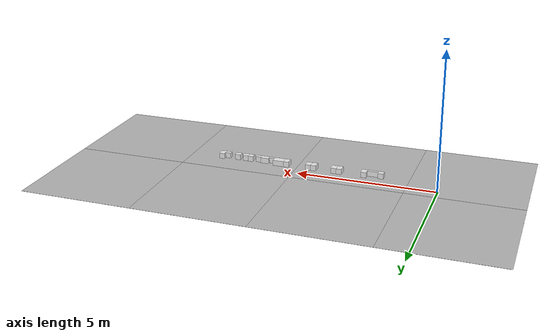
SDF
<sdf version='1.6'><world name='default'>
    <light name='sun_light' type='directional'>
      <pose frame=''>0 0 10 0 -0 0</pose>
      <diffuse>0.5 0.5 0.5 1</diffuse>
      <specular>0.1 0.1 0.1 1</specular>
      <direction>0.1 0.1 -0.9</direction>
      <attenuation>
        <range>20</range>
        <constant>0.5</constant>
        <linear>0.01</linear>
        <quadratic>0.001</quadratic>
      </attenuation>
      <cast_shadows>1</cast_shadows>
    </light>

    <model name='Tile/0-0'>
      <static>1</static>
      <link name='link'>
        <collision name='collision'>
          <geometry>
            <plane>
              <normal>0 0 1</normal>
              <size>4.096 4.096</size>
            </plane>
          </geometry>
          <surface>
            <friction>
              <ode>
                <mu>100</mu>
                <mu2>50</mu2>
              </ode>
              <torsional>
                <ode/>
              </torsional>
            </friction>
            <contact>
              <ode/>
            </contact>
            <bounce/>
          </surface>
          <max_contacts>10</max_contacts>
        </collision>
        <visual name='visual'>
          <cast_shadows>0</cast_shadows>
          <geometry>
            <plane>
              <normal>0 0 1</normal>
              <size>4.096 4.096</size>
            </plane>
          </geometry>
          <material>
            <script>
              <uri>file://materials/scripts</uri>
              <uri>file://materials/textures</uri>
              <name>Tile/aa44efc093d15b0d016b671cb8dad8b9b5925cd42bc6b331ef31decf4ba6863e</name>
            </script>
          </material>
        </visual>
        <self_collide>0</self_collide>
        <enable_wind>0</enable_wind>
        <kinematic>0</kinematic>
      </link>
      <pose frame=''>-0.952 -1.6520000000000001 0 0 -0 0</pose>
    </model>

    <model name='Tile/0-1'>
      <static>1</static>
      <link name='link'>
        <collision name='collision'>
          <geometry>
            <plane>
              <normal>0 0 1</normal>
              <size>4.096 4.096</size>
            </plane>
          </geometry>
          <surface>
            <friction>
              <ode>
                <mu>100</mu>
                <mu2>50</mu2>
              </ode>
              <torsional>
                <ode/>
              </torsional>
            </friction>
            <contact>
              <ode/>
            </contact>
            <bounce/>
          </surface>
          <max_contacts>10</max_contacts>
        </collision>
        <visual name='visual'>
          <cast_shadows>0</cast_shadows>
          <geometry>
            <plane>
              <normal>0 0 1</normal>
              <size>4.096 4.096</size>
            </plane>
          </geometry>
          <material>
            <script>
              <uri>file://materials/scripts</uri>
              <uri>file://materials/textures</uri>
              <name>Tile/6681b896b1587d54cb69aadeb5fb7247b4d6d500490292053e67105ac88ca889</name>
            </script>
          </material>
        </visual>
        <self_collide>0</self_collide>
        <enable_wind>0</enable_wind>
        <kinematic>0</kinematic>
      </link>
      <pose frame=''>-0.952 2.444 0 0 -0 0</pose>
    </model>

    <model name='Tile/1-0'>
      <static>1</static>
      <link name='link'>
        <collision name='collision'>
          <geometry>
            <plane>
              <normal>0 0 1</normal>
              <size>4.096 4.096</size>
            </plane>
          </geometry>
          <surface>
            <friction>
              <ode>
                <mu>100</mu>
                <mu2>50</mu2>
              </ode>
              <torsional>
                <ode/>
              </torsional>
            </friction>
            <contact>
              <ode/>
            </contact>
            <bounce/>
          </surface>
          <max_contacts>10</max_contacts>
        </collision>
        <visual name='visual'>
          <cast_shadows>0</cast_shadows>
          <geometry>
            <plane>
              <normal>0 0 1</normal>
              <size>4.096 4.096</size>
            </plane>
          </geometry>
          <material>
            <script>
              <uri>file://materials/scripts</uri>
              <uri>file://materials/textures</uri>
              <name>Tile/ac60f42697dc3697069ae2f91f63679c82d3df775ef8773f632b1540f83ccfba</name>
            </script>
          </material>
        </visual>
        <self_collide>0</self_collide>
        <enable_wind>0</enable_wind>
        <kinematic>0</kinematic>
      </link>
      <pose frame=''>3.144 -1.6520000000000001 0 0 -0 0</pose>
    </model>

    <model name='Tile/1-1'>
      <static>1</static>
      <link name='link'>
        <collision name='collision'>
          <geometry>
            <plane>
              <normal>0 0 1</normal>
              <size>4.096 4.096</size>
            </plane>
          </geometry>
          <surface>
            <friction>
              <ode>
                <mu>100</mu>
                <mu2>50</mu2>
              </ode>
              <torsional>
                <ode/>
              </torsional>
            </friction>
            <contact>
              <ode/>
            </contact>
            <bounce/>
          </surface>
          <max_contacts>10</max_contacts>
        </collision>
        <visual name='visual'>
          <cast_shadows>0</cast_shadows>
          <geometry>
            <plane>
              <normal>0 0 1</normal>
              <size>4.096 4.096</size>
            </plane>
          </geometry>
          <material>
            <script>
              <uri>file://materials/scripts</uri>
              <uri>file://materials/textures</uri>
              <name>Tile/13957a6de1f2afce18d7f1f64dacc2f21295e26ccf498256b0e1a51002cd5706</name>
            </script>
          </material>
        </visual>
        <self_collide>0</self_collide>
        <enable_wind>0</enable_wind>
        <kinematic>0</kinematic>
      </link>
      <pose frame=''>3.144 2.444 0 0 -0 0</pose>
    </model>

    <model name='Tile/2-0'>
      <static>1</static>
      <link name='link'>
        <collision name='collision'>
          <geometry>
            <plane>
              <normal>0 0 1</normal>
              <size>4.096 4.096</size>
            </plane>
          </geometry>
          <surface>
            <friction>
              <ode>
                <mu>100</mu>
                <mu2>50</mu2>
              </ode>
              <torsional>
                <ode/>
              </torsional>
            </friction>
            <contact>
              <ode/>
            </contact>
            <bounce/>
          </surface>
          <max_contacts>10</max_contacts>
        </collision>
        <visual name='visual'>
          <cast_shadows>0</cast_shadows>
          <geometry>
            <plane>
              <normal>0 0 1</normal>
              <size>4.096 4.096</size>
            </plane>
          </geometry>
          <material>
            <script>
              <uri>file://materials/scripts</uri>
              <uri>file://materials/textures</uri>
              <name>Tile/bb4e230d10bed35599b0b6122eb139459b07c0649bdebc5197fb7011a85cf1d3</name>
            </script>
          </material>
        </visual>
        <self_collide>0</self_collide>
        <enable_wind>0</enable_wind>
        <kinematic>0</kinematic>
      </link>
      <pose frame=''>7.24 -1.6520000000000001 0 0 -0 0</pose>
    </model>

    <model name='Tile/2-1'>
      <static>1</static>
      <link name='link'>
        <collision name='collision'>
          <geometry>
            <plane>
              <normal>0 0 1</normal>
              <size>4.096 4.096</size>
            </plane>
          </geometry>
          <surface>
            <friction>
              <ode>
                <mu>100</mu>
                <mu2>50</mu2>
              </ode>
              <torsional>
                <ode/>
              </torsional>
            </friction>
            <contact>
              <ode/>
            </contact>
            <bounce/>
          </surface>
          <max_contacts>10</max_contacts>
        </collision>
        <visual name='visual'>
          <cast_shadows>0</cast_shadows>
          <geometry>
            <plane>
              <normal>0 0 1</normal>
              <size>4.096 4.096</size>
            </plane>
          </geometry>
          <material>
            <script>
              <uri>file://materials/scripts</uri>
              <uri>file://materials/textures</uri>
              <name>Tile/13957a6de1f2afce18d7f1f64dacc2f21295e26ccf498256b0e1a51002cd5706</name>
            </script>
          </material>
        </visual>
        <self_collide>0</self_collide>
        <enable_wind>0</enable_wind>
        <kinematic>0</kinematic>
      </link>
      <pose frame=''>7.24 2.444 0 0 -0 0</pose>
    </model>

    <model name='Tile/3-0'>
      <static>1</static>
      <link name='link'>
        <collision name='collision'>
          <geometry>
            <plane>
              <normal>0 0 1</normal>
              <size>4.096 4.096</size>
            </plane>
          </geometry>
          <surface>
            <friction>
              <ode>
                <mu>100</mu>
                <mu2>50</mu2>
              </ode>
              <torsional>
                <ode/>
              </torsional>
            </friction>
            <contact>
              <ode/>
            </contact>
            <bounce/>
          </surface>
          <max_contacts>10</max_contacts>
        </collision>
        <visual name='visual'>
          <cast_shadows>0</cast_shadows>
          <geometry>
            <plane>
              <normal>0 0 1</normal>
              <size>4.096 4.096</size>
            </plane>
          </geometry>
          <material>
            <script>
              <uri>file://materials/scripts</uri>
              <uri>file://materials/textures</uri>
              <name>Tile/51d233b85cde462f4055010ae3425bc9865214a12565d0ea43b0c4c1eb77e453</name>
            </script>
          </material>
        </visual>
        <self_collide>0</self_collide>
        <enable_wind>0</enable_wind>
        <kinematic>0</kinematic>
      </link>
      <pose frame=''>11.336 -1.6520000000000001 0 0 -0 0</pose>
    </model>

    <model name='Tile/3-1'>
      <static>1</static>
      <link name='link'>
        <collision name='collision'>
          <geometry>
            <plane>
              <normal>0 0 1</normal>
              <size>4.096 4.096</size>
            </plane>
          </geometry>
          <surface>
            <friction>
              <ode>
                <mu>100</mu>
                <mu2>50</mu2>
              </ode>
              <torsional>
                <ode/>
              </torsional>
            </friction>
            <contact>
              <ode/>
            </contact>
            <bounce/>
          </surface>
          <max_contacts>10</max_contacts>
        </collision>
        <visual name='visual'>
          <cast_shadows>0</cast_shadows>
          <geometry>
            <plane>
              <normal>0 0 1</normal>
              <size>4.096 4.096</size>
            </plane>
          </geometry>
          <material>
            <script>
              <uri>file://materials/scripts</uri>
              <uri>file://materials/textures</uri>
              <name>Tile/411268dc0bdaaa82f6734e64b6a3a6cf1dd292dfc683d008b9b3f96255a1e28b</name>
            </script>
          </material>
        </visual>
        <self_collide>0</self_collide>
        <enable_wind>0</enable_wind>
        <kinematic>0</kinematic>
      </link>
      <pose frame=''>11.336 2.444 0 0 -0 0</pose>
    </model>

    <model name='Obstacle/-5/0'>
      <pose frame=''>2.1 -0.6 0.1 0 0 -0.0</pose>
      <link name='link'>
        <inertial>
          <mass>10</mass>
          <inertia>
            <ixx>0.166667</ixx>
            <ixy>0</ixy>
            <ixz>0</ixz>
            <iyy>0.166667</iyy>
            <iyz>0</iyz>
            <izz>0.166667</izz>
          </inertia>
        </inertial>
        <collision name='collision'>
          <geometry>
            <box>
              <size>0.2 0.2 0.2</size>
            </box>
          </geometry>
          <max_contacts>10</max_contacts>
          <surface>
            <contact>
              <ode/>
            </contact>
            <bounce/>
            <friction>
              <torsional>
                <ode/>
              </torsional>
              <ode/>
            </friction>
          </surface>
        </collision>
        <visual name='visual'>
          <geometry>
            <box>
              <size>0.2 0.2 0.2</size>
            </box>
          </geometry>
          <material>
            <script>
              <name>Gazebo/White</name>
              <uri>file://media/materials/scripts/gazebo.material</uri>
            </script>
          </material>
        </visual>
        <self_collide>0</self_collide>
        <enable_wind>0</enable_wind>
        <kinematic>0</kinematic>
      </link>
    </model>

    <model name='Obstacle/-9/0'>
      <pose frame=''>2.4000000000000004 -0.6499999999999999 0.1 0 0 -0.0</pose>
      <link name='link'>
        <inertial>
          <mass>10</mass>
          <inertia>
            <ixx>0.166667</ixx>
            <ixy>0</ixy>
            <ixz>0</ixz>
            <iyy>0.166667</iyy>
            <iyz>0</iyz>
            <izz>0.166667</izz>
          </inertia>
        </inertial>
        <collision name='collision'>
          <geometry>
            <box>
              <size>0.4 0.1 0.2</size>
            </box>
          </geometry>
          <max_contacts>10</max_contacts>
          <surface>
            <contact>
              <ode/>
            </contact>
            <bounce/>
            <friction>
              <torsional>
                <ode/>
              </torsional>
              <ode/>
            </friction>
          </surface>
        </collision>
        <visual name='visual'>
          <geometry>
            <box>
              <size>0.4 0.1 0.2</size>
            </box>
          </geometry>
          <material>
            <script>
              <name>Gazebo/White</name>
              <uri>file://media/materials/scripts/gazebo.material</uri>
            </script>
          </material>
        </visual>
        <self_collide>0</self_collide>
        <enable_wind>0</enable_wind>
        <kinematic>0</kinematic>
      </link>
    </model>

    <model name='Obstacle/-13/0'>
      <pose frame=''>2.7 -0.5599999999999999 0.1 0 0 -0.0</pose>
      <link name='link'>
        <inertial>
          <mass>10</mass>
          <inertia>
            <ixx>0.166667</ixx>
            <ixy>0</ixy>
            <ixz>0</ixz>
            <iyy>0.166667</iyy>
            <iyz>0</iyz>
            <izz>0.166667</izz>
          </inertia>
        </inertial>
        <collision name='collision'>
          <geometry>
            <box>
              <size>0.2 0.28 0.2</size>
            </box>
          </geometry>
          <max_contacts>10</max_contacts>
          <surface>
            <contact>
              <ode/>
            </contact>
            <bounce/>
            <friction>
              <torsional>
                <ode/>
              </torsional>
              <ode/>
            </friction>
          </surface>
        </collision>
        <visual name='visual'>
          <geometry>
            <box>
              <size>0.2 0.28 0.2</size>
            </box>
          </geometry>
          <material>
            <script>
              <name>Gazebo/White</name>
              <uri>file://media/materials/scripts/gazebo.material</uri>
            </script>
          </material>
        </visual>
        <self_collide>0</self_collide>
        <enable_wind>0</enable_wind>
        <kinematic>0</kinematic>
      </link>
    </model>

    <model name='Obstacle/-20/0'>
      <pose frame=''>3.6 -0.5599999999999999 0.1 0 0 -0.0</pose>
      <link name='link'>
        <inertial>
          <mass>10</mass>
          <inertia>
            <ixx>0.166667</ixx>
            <ixy>0</ixy>
            <ixz>0</ixz>
            <iyy>0.166667</iyy>
            <iyz>0</iyz>
            <izz>0.166667</izz>
          </inertia>
        </inertial>
        <collision name='collision'>
          <geometry>
            <box>
              <size>0.2 0.28 0.2</size>
            </box>
          </geometry>
          <max_contacts>10</max_contacts>
          <surface>
            <contact>
              <ode/>
            </contact>
            <bounce/>
            <friction>
              <torsional>
                <ode/>
              </torsional>
              <ode/>
            </friction>
          </surface>
        </collision>
        <visual name='visual'>
          <geometry>
            <box>
              <size>0.2 0.28 0.2</size>
            </box>
          </geometry>
          <material>
            <script>
              <name>Gazebo/White</name>
              <uri>file://media/materials/scripts/gazebo.material</uri>
            </script>
          </material>
        </visual>
        <self_collide>0</self_collide>
        <enable_wind>0</enable_wind>
        <kinematic>0</kinematic>
      </link>
    </model>

    <model name='Obstacle/-24/0'>
      <pose frame=''>3.8000000000000003 -0.5599999999999999 0.1 0 0 -0.0</pose>
      <link name='link'>
        <inertial>
          <mass>10</mass>
          <inertia>
            <ixx>0.166667</ixx>
            <ixy>0</ixy>
            <ixz>0</ixz>
            <iyy>0.166667</iyy>
            <iyz>0</iyz>
            <izz>0.166667</izz>
          </inertia>
        </inertial>
        <collision name='collision'>
          <geometry>
            <box>
              <size>0.2 0.28 0.2</size>
            </box>
          </geometry>
          <max_contacts>10</max_contacts>
          <surface>
            <contact>
              <ode/>
            </contact>
            <bounce/>
            <friction>
              <torsional>
                <ode/>
              </torsional>
              <ode/>
            </friction>
          </surface>
        </collision>
        <visual name='visual'>
          <geometry>
            <box>
              <size>0.2 0.28 0.2</size>
            </box>
          </geometry>
          <material>
            <script>
              <name>Gazebo/White</name>
              <uri>file://media/materials/scripts/gazebo.material</uri>
            </script>
          </material>
        </visual>
        <self_collide>0</self_collide>
        <enable_wind>0</enable_wind>
        <kinematic>0</kinematic>
      </link>
    </model>

    <model name='Obstacle/-31/0'>
      <pose frame=''>4.55 -0.5599999999999999 0.1 0 0 -0.0</pose>
      <link name='link'>
        <inertial>
          <mass>10</mass>
          <inertia>
            <ixx>0.166667</ixx>
            <ixy>0</ixy>
            <ixz>0</ixz>
            <iyy>0.166667</iyy>
            <iyz>0</iyz>
            <izz>0.166667</izz>
          </inertia>
        </inertial>
        <collision name='collision'>
          <geometry>
            <box>
              <size>0.2 0.28 0.2</size>
            </box>
          </geometry>
          <max_contacts>10</max_contacts>
          <surface>
            <contact>
              <ode/>
            </contact>
            <bounce/>
            <friction>
              <torsional>
                <ode/>
              </torsional>
              <ode/>
            </friction>
          </surface>
        </collision>
        <visual name='visual'>
          <geometry>
            <box>
              <size>0.2 0.28 0.2</size>
            </box>
          </geometry>
          <material>
            <script>
              <name>Gazebo/White</name>
              <uri>file://media/materials/scripts/gazebo.material</uri>
            </script>
          </material>
        </visual>
        <self_collide>0</self_collide>
        <enable_wind>0</enable_wind>
        <kinematic>0</kinematic>
      </link>
    </model>

    <model name='Obstacle/-35/0'>
      <pose frame=''>4.75 -0.5599999999999999 0.1 0 0 -0.0</pose>
      <link name='link'>
        <inertial>
          <mass>10</mass>
          <inertia>
            <ixx>0.166667</ixx>
            <ixy>0</ixy>
            <ixz>0</ixz>
            <iyy>0.166667</iyy>
            <iyz>0</iyz>
            <izz>0.166667</izz>
          </inertia>
        </inertial>
        <collision name='collision'>
          <geometry>
            <box>
              <size>0.2 0.28 0.2</size>
            </box>
          </geometry>
          <max_contacts>10</max_contacts>
          <surface>
            <contact>
              <ode/>
            </contact>
            <bounce/>
            <friction>
              <torsional>
                <ode/>
              </torsional>
              <ode/>
            </friction>
          </surface>
        </collision>
        <visual name='visual'>
          <geometry>
            <box>
              <size>0.2 0.28 0.2</size>
            </box>
          </geometry>
          <material>
            <script>
              <name>Gazebo/White</name>
              <uri>file://media/materials/scripts/gazebo.material</uri>
            </script>
          </material>
        </visual>
        <self_collide>0</self_collide>
        <enable_wind>0</enable_wind>
        <kinematic>0</kinematic>
      </link>
    </model>

    <model name='Obstacle/-42/0'>
      <pose frame=''>5.58 -0.5599999999999999 0.1 0 0 -0.0</pose>
      <link name='link'>
        <inertial>
          <mass>10</mass>
          <inertia>
            <ixx>0.166667</ixx>
            <ixy>0</ixy>
            <ixz>0</ixz>
            <iyy>0.166667</iyy>
            <iyz>0</iyz>
            <izz>0.166667</izz>
          </inertia>
        </inertial>
        <collision name='collision'>
          <geometry>
            <box>
              <size>0.2 0.28 0.2</size>
            </box>
          </geometry>
          <max_contacts>10</max_contacts>
          <surface>
            <contact>
              <ode/>
            </contact>
            <bounce/>
            <friction>
              <torsional>
                <ode/>
              </torsional>
              <ode/>
            </friction>
          </surface>
        </collision>
        <visual name='visual'>
          <geometry>
            <box>
              <size>0.2 0.28 0.2</size>
            </box>
          </geometry>
          <material>
            <script>
              <name>Gazebo/White</name>
              <uri>file://media/materials/scripts/gazebo.material</uri>
            </script>
          </material>
        </visual>
        <self_collide>0</self_collide>
        <enable_wind>0</enable_wind>
        <kinematic>0</kinematic>
      </link>
    </model>

    <model name='Obstacle/-46/0'>
      <pose frame=''>5.880000000000001 -0.5599999999999999 0.1 0 0 -0.0</pose>
      <link name='link'>
        <inertial>
          <mass>10</mass>
          <inertia>
            <ixx>0.166667</ixx>
            <ixy>0</ixy>
            <ixz>0</ixz>
            <iyy>0.166667</iyy>
            <iyz>0</iyz>
            <izz>0.166667</izz>
          </inertia>
        </inertial>
        <collision name='collision'>
          <geometry>
            <box>
              <size>0.4 0.28 0.2</size>
            </box>
          </geometry>
          <max_contacts>10</max_contacts>
          <surface>
            <contact>
              <ode/>
            </contact>
            <bounce/>
            <friction>
              <torsional>
                <ode/>
              </torsional>
              <ode/>
            </friction>
          </surface>
        </collision>
        <visual name='visual'>
          <geometry>
            <box>
              <size>0.4 0.28 0.2</size>
            </box>
          </geometry>
          <material>
            <script>
              <name>Gazebo/White</name>
              <uri>file://media/materials/scripts/gazebo.material</uri>
            </script>
          </material>
        </visual>
        <self_collide>0</self_collide>
        <enable_wind>0</enable_wind>
        <kinematic>0</kinematic>
      </link>
    </model>

    <model name='Obstacle/-50/0'>
      <pose frame=''>6.180000000000001 -0.6499999999999999 0.1 0 0 -0.0</pose>
      <link name='link'>
        <inertial>
          <mass>10</mass>
          <inertia>
            <ixx>0.166667</ixx>
            <ixy>0</ixy>
            <ixz>0</ixz>
            <iyy>0.166667</iyy>
            <iyz>0</iyz>
            <izz>0.166667</izz>
          </inertia>
        </inertial>
        <collision name='collision'>
          <geometry>
            <box>
              <size>0.2 0.1 0.2</size>
            </box>
          </geometry>
          <max_contacts>10</max_contacts>
          <surface>
            <contact>
              <ode/>
            </contact>
            <bounce/>
            <friction>
              <torsional>
                <ode/>
              </torsional>
              <ode/>
            </friction>
          </surface>
        </collision>
        <visual name='visual'>
          <geometry>
            <box>
              <size>0.2 0.1 0.2</size>
            </box>
          </geometry>
          <material>
            <script>
              <name>Gazebo/White</name>
              <uri>file://media/materials/scripts/gazebo.material</uri>
            </script>
          </material>
        </visual>
        <self_collide>0</self_collide>
        <enable_wind>0</enable_wind>
        <kinematic>0</kinematic>
      </link>
    </model>

    <model name='Obstacle/-54/0'>
      <pose frame=''>6.4300000000000015 -0.6 0.1 0 0 -0.0</pose>
      <link name='link'>
        <inertial>
          <mass>10</mass>
          <inertia>
            <ixx>0.166667</ixx>
            <ixy>0</ixy>
            <ixz>0</ixz>
            <iyy>0.166667</iyy>
            <iyz>0</iyz>
            <izz>0.166667</izz>
          </inertia>
        </inertial>
        <collision name='collision'>
          <geometry>
            <box>
              <size>0.3 0.2 0.2</size>
            </box>
          </geometry>
          <max_contacts>10</max_contacts>
          <surface>
            <contact>
              <ode/>
            </contact>
            <bounce/>
            <friction>
              <torsional>
                <ode/>
              </torsional>
              <ode/>
            </friction>
          </surface>
        </collision>
        <visual name='visual'>
          <geometry>
            <box>
              <size>0.3 0.2 0.2</size>
            </box>
          </geometry>
          <material>
            <script>
              <name>Gazebo/White</name>
              <uri>file://media/materials/scripts/gazebo.material</uri>
            </script>
          </material>
        </visual>
        <self_collide>0</self_collide>
        <enable_wind>0</enable_wind>
        <kinematic>0</kinematic>
      </link>
    </model>

    <model name='Obstacle/-58/0'>
      <pose frame=''>6.680000000000001 -0.625 0.1 0 0 -0.0</pose>
      <link name='link'>
        <inertial>
          <mass>10</mass>
          <inertia>
            <ixx>0.166667</ixx>
            <ixy>0</ixy>
            <ixz>0</ixz>
            <iyy>0.166667</iyy>
            <iyz>0</iyz>
            <izz>0.166667</izz>
          </inertia>
        </inertial>
        <collision name='collision'>
          <geometry>
            <box>
              <size>0.2 0.15 0.2</size>
            </box>
          </geometry>
          <max_contacts>10</max_contacts>
          <surface>
            <contact>
              <ode/>
            </contact>
            <bounce/>
            <friction>
              <torsional>
                <ode/>
              </torsional>
              <ode/>
            </friction>
          </surface>
        </collision>
        <visual name='visual'>
          <geometry>
            <box>
              <size>0.2 0.15 0.2</size>
            </box>
          </geometry>
          <material>
            <script>
              <name>Gazebo/White</name>
              <uri>file://media/materials/scripts/gazebo.material</uri>
            </script>
          </material>
        </visual>
        <self_collide>0</self_collide>
        <enable_wind>0</enable_wind>
        <kinematic>0</kinematic>
      </link>
    </model>

    <model name='Obstacle/-65/0'>
      <pose frame=''>6.98 -0.6 0.1 0 0 -0.0</pose>
      <link name='link'>
        <inertial>
          <mass>10</mass>
          <inertia>
            <ixx>0.166667</ixx>
            <ixy>0</ixy>
            <ixz>0</ixz>
            <iyy>0.166667</iyy>
            <iyz>0</iyz>
            <izz>0.166667</izz>
          </inertia>
        </inertial>
        <collision name='collision'>
          <geometry>
            <box>
              <size>0.2 0.2 0.2</size>
            </box>
          </geometry>
          <max_contacts>10</max_contacts>
          <surface>
            <contact>
              <ode/>
            </contact>
            <bounce/>
            <friction>
              <torsional>
                <ode/>
              </torsional>
              <ode/>
            </friction>
          </surface>
        </collision>
        <visual name='visual'>
          <geometry>
            <box>
              <size>0.2 0.2 0.2</size>
            </box>
          </geometry>
          <material>
            <script>
              <name>Gazebo/White</name>
              <uri>file://media/materials/scripts/gazebo.material</uri>
            </script>
          </material>
        </visual>
        <self_collide>0</self_collide>
        <enable_wind>0</enable_wind>
        <kinematic>0</kinematic>
      </link>
    </model>

    <model name='Obstacle/-69/0'>
      <pose frame=''>7.180000000000001 -0.6 0.1 0 0 -0.0</pose>
      <link name='link'>
        <inertial>
          <mass>10</mass>
          <inertia>
            <ixx>0.166667</ixx>
            <ixy>0</ixy>
            <ixz>0</ixz>
            <iyy>0.166667</iyy>
            <iyz>0</iyz>
            <izz>0.166667</izz>
          </inertia>
        </inertial>
        <collision name='collision'>
          <geometry>
            <box>
              <size>0.2 0.2 0.2</size>
            </box>
          </geometry>
          <max_contacts>10</max_contacts>
          <surface>
            <contact>
              <ode/>
            </contact>
            <bounce/>
            <friction>
              <torsional>
                <ode/>
              </torsional>
              <ode/>
            </friction>
          </surface>
        </collision>
        <visual name='visual'>
          <geometry>
            <box>
              <size>0.2 0.2 0.2</size>
            </box>
          </geometry>
          <material>
            <script>
              <name>Gazebo/White</name>
              <uri>file://media/materials/scripts/gazebo.material</uri>
            </script>
          </material>
        </visual>
        <self_collide>0</self_collide>
        <enable_wind>0</enable_wind>
        <kinematic>0</kinematic>
      </link>
    </model>

    <model name='Obstacle/-76/0'>
      <pose frame=''>7.48 -0.6 0.1 0 0 -0.0</pose>
      <link name='link'>
        <inertial>
          <mass>10</mass>
          <inertia>
            <ixx>0.166667</ixx>
            <ixy>0</ixy>
            <ixz>0</ixz>
            <iyy>0.166667</iyy>
            <iyz>0</iyz>
            <izz>0.166667</izz>
          </inertia>
        </inertial>
        <collision name='collision'>
          <geometry>
            <box>
              <size>0.2 0.2 0.2</size>
            </box>
          </geometry>
          <max_contacts>10</max_contacts>
          <surface>
            <contact>
              <ode/>
            </contact>
            <bounce/>
            <friction>
              <torsional>
                <ode/>
              </torsional>
              <ode/>
            </friction>
          </surface>
        </collision>
        <visual name='visual'>
          <geometry>
            <box>
              <size>0.2 0.2 0.2</size>
            </box>
          </geometry>
          <material>
            <script>
              <name>Gazebo/White</name>
              <uri>file://media/materials/scripts/gazebo.material</uri>
            </script>
          </material>
        </visual>
        <self_collide>0</self_collide>
        <enable_wind>0</enable_wind>
        <kinematic>0</kinematic>
      </link>
    </model>

    <model name='Obstacle/-83/0'>
      <pose frame=''>7.880000000000001 -0.625 0.1 0 0 -0.0</pose>
      <link name='link'>
        <inertial>
          <mass>10</mass>
          <inertia>
            <ixx>0.166667</ixx>
            <ixy>0</ixy>
            <ixz>0</ixz>
            <iyy>0.166667</iyy>
            <iyz>0</iyz>
            <izz>0.166667</izz>
          </inertia>
        </inertial>
        <collision name='collision'>
          <geometry>
            <box>
              <size>0.2 0.15 0.2</size>
            </box>
          </geometry>
          <max_contacts>10</max_contacts>
          <surface>
            <contact>
              <ode/>
            </contact>
            <bounce/>
            <friction>
              <torsional>
                <ode/>
              </torsional>
              <ode/>
            </friction>
          </surface>
        </collision>
        <visual name='visual'>
          <geometry>
            <box>
              <size>0.2 0.15 0.2</size>
            </box>
          </geometry>
          <material>
            <script>
              <name>Gazebo/White</name>
              <uri>file://media/materials/scripts/gazebo.material</uri>
            </script>
          </material>
        </visual>
        <self_collide>0</self_collide>
        <enable_wind>0</enable_wind>
        <kinematic>0</kinematic>
      </link>
    </model>

    <model name='Obstacle/-87/0'>
      <pose frame=''>8.080000000000002 -0.5599999999999999 0.1 0 0 -0.0</pose>
      <link name='link'>
        <inertial>
          <mass>10</mass>
          <inertia>
            <ixx>0.166667</ixx>
            <ixy>0</ixy>
            <ixz>0</ixz>
            <iyy>0.166667</iyy>
            <iyz>0</iyz>
            <izz>0.166667</izz>
          </inertia>
        </inertial>
        <collision name='collision'>
          <geometry>
            <box>
              <size>0.2 0.28 0.2</size>
            </box>
          </geometry>
          <max_contacts>10</max_contacts>
          <surface>
            <contact>
              <ode/>
            </contact>
            <bounce/>
            <friction>
              <torsional>
                <ode/>
              </torsional>
              <ode/>
            </friction>
          </surface>
        </collision>
        <visual name='visual'>
          <geometry>
            <box>
              <size>0.2 0.28 0.2</size>
            </box>
          </geometry>
          <material>
            <script>
              <name>Gazebo/White</name>
              <uri>file://media/materials/scripts/gazebo.material</uri>
            </script>
          </material>
        </visual>
        <self_collide>0</self_collide>
        <enable_wind>0</enable_wind>
        <kinematic>0</kinematic>
      </link>
    </model>
    </world></sdf>
